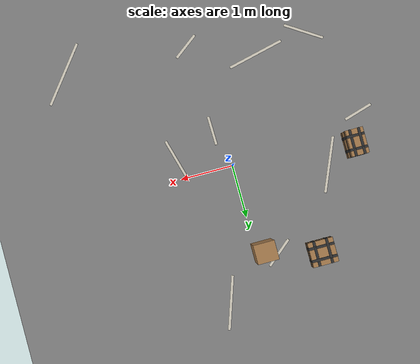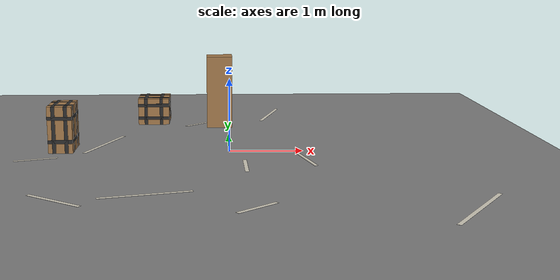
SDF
<sdf version="1.9">
 <world name="ecps295_lowbox_s6_monitor">
  <model name="ground_plane">
   <static>true</static>
   <link name="link">
    <collision name="collision">
     <geometry><plane><normal>0 0 1</normal><size>50 50</size></plane></geometry>
    </collision>
    <visual name="visual">
     <geometry><plane><normal>0 0 1</normal><size>50 50</size></plane></geometry>
     <material><ambient>0.5 0.5 0.5 1</ambient><diffuse>0.5 0.5 0.5 1</diffuse></material>
    </visual>
   </link>
  </model>
  <model name="floor_tape">
   <static>true</static>
   <link name="link">
    <visual name="tape0">
     <pose>-0.969 -1.920 0.003 0 0 0.2276</pose>
     <geometry><box><size>1.086 0.050 0.001</size></box></geometry>
     <material><ambient>0.82 0.80 0.74 1</ambient><diffuse>0.82 0.80 0.74 1</diffuse></material>
    </visual>
    <visual name="tape1">
     <pose>0.197 -0.739 0.003 0 0 1.5942</pose>
     <geometry><box><size>0.552 0.050 0.001</size></box></geometry>
     <material><ambient>0.82 0.80 0.74 1</ambient><diffuse>0.82 0.80 0.74 1</diffuse></material>
    </visual>
    <visual name="tape2">
     <pose>-2.544 -0.365 0.003 0 0 0.2850</pose>
     <geometry><box><size>0.563 0.050 0.001</size></box></geometry>
     <material><ambient>0.82 0.80 0.74 1</ambient><diffuse>0.82 0.80 0.74 1</diffuse></material>
    </visual>
    <visual name="tape3">
     <pose>-0.415 1.798 0.003 0 0 0.7013</pose>
     <geometry><box><size>0.611 0.050 0.001</size></box></geometry>
     <material><ambient>0.82 0.80 0.74 1</ambient><diffuse>0.82 0.80 0.74 1</diffuse></material>
    </visual>
    <visual name="tape4">
     <pose>0.701 2.462 0.003 0 0 1.2462</pose>
     <geometry><box><size>1.019 0.050 0.001</size></box></geometry>
     <material><ambient>0.82 0.80 0.74 1</ambient><diffuse>0.82 0.80 0.74 1</diffuse></material>
    </visual>
    <visual name="tape5">
     <pose>2.619 -2.494 0.003 0 0 0.9098</pose>
     <geometry><box><size>1.273 0.050 0.001</size></box></geometry>
     <material><ambient>0.82 0.80 0.74 1</ambient><diffuse>0.82 0.80 0.74 1</diffuse></material>
    </visual>
    <visual name="tape6">
     <pose>-1.957 -2.102 0.003 0 0 2.5639</pose>
     <geometry><box><size>0.778 0.050 0.001</size></box></geometry>
     <material><ambient>0.82 0.80 0.74 1</ambient><diffuse>0.82 0.80 0.74 1</diffuse></material>
    </visual>
    <visual name="tape7">
     <pose>-1.756 0.449 0.003 0 0 1.1699</pose>
     <geometry><box><size>1.075 0.050 0.001</size></box></geometry>
     <material><ambient>0.82 0.80 0.74 1</ambient><diffuse>0.82 0.80 0.74 1</diffuse></material>
    </visual>
    <visual name="tape8">
     <pose>0.263 -2.405 0.003 0 0 0.6470</pose>
     <geometry><box><size>0.554 0.050 0.001</size></box></geometry>
     <material><ambient>0.82 0.80 0.74 1</ambient><diffuse>0.82 0.80 0.74 1</diffuse></material>
    </visual>
    <visual name="tape9">
     <pose>0.992 -0.398 0.003 0 0 1.8396</pose>
     <geometry><box><size>0.783 0.050 0.001</size></box></geometry>
     <material><ambient>0.82 0.80 0.74 1</ambient><diffuse>0.82 0.80 0.74 1</diffuse></material>
    </visual>
   </link>
  </model>
  <model name="lb1">
   <static>true</static>
   <pose>-0.13 1.67 0.55 0 0 0</pose>
   <link name="link">
    <collision name="c"><geometry><box><size>0.39 0.35 1.1</size></box></geometry></collision>
    <visual name="v">
     <geometry><box><size>0.39 0.35 1.1</size></box></geometry>
     <material><ambient>0.65 0.48 0.30 1</ambient><diffuse>0.65 0.48 0.30 1</diffuse></material>
    </visual>
   </link>
  </model>
  <model name="lb2">
   <static>true</static>
   <pose>-2.28 0.19 0.32 0 0 0</pose>
   <link name="link">
    <collision name="c"><geometry><box><size>0.33 0.49 0.64</size></box></geometry></collision>
    <visual name="v">
     <geometry><box><size>0.33 0.49 0.64</size></box></geometry>
     <material><ambient>0.65 0.48 0.30 1</ambient><diffuse>0.65 0.48 0.30 1</diffuse></material>
    </visual>
    <visual name="tape_ring0">
     <pose>0.000 0.000 -0.160 0 0 0</pose>
     <geometry><box><size>0.334 0.494 0.050</size></box></geometry>
     <material><ambient>0.18 0.18 0.18 1</ambient><diffuse>0.18 0.18 0.18 1</diffuse></material>
    </visual>
    <visual name="tape_bx0">
     <pose>-0.083 0.000 0.000 0 0 0</pose>
     <geometry><box><size>0.050 0.494 0.644</size></box></geometry>
     <material><ambient>0.18 0.18 0.18 1</ambient><diffuse>0.18 0.18 0.18 1</diffuse></material>
    </visual>
    <visual name="tape_by0">
     <pose>0.000 -0.122 0.000 0 0 0</pose>
     <geometry><box><size>0.334 0.050 0.644</size></box></geometry>
     <material><ambient>0.18 0.18 0.18 1</ambient><diffuse>0.18 0.18 0.18 1</diffuse></material>
    </visual>
    <visual name="tape_ring1">
     <pose>0.000 0.000 0.160 0 0 0</pose>
     <geometry><box><size>0.334 0.494 0.050</size></box></geometry>
     <material><ambient>0.18 0.18 0.18 1</ambient><diffuse>0.18 0.18 0.18 1</diffuse></material>
    </visual>
    <visual name="tape_bx1">
     <pose>0.083 0.000 0.000 0 0 0</pose>
     <geometry><box><size>0.050 0.494 0.644</size></box></geometry>
     <material><ambient>0.18 0.18 0.18 1</ambient><diffuse>0.18 0.18 0.18 1</diffuse></material>
    </visual>
    <visual name="tape_by1">
     <pose>0.000 0.122 0.000 0 0 0</pose>
     <geometry><box><size>0.334 0.050 0.644</size></box></geometry>
     <material><ambient>0.18 0.18 0.18 1</ambient><diffuse>0.18 0.18 0.18 1</diffuse></material>
    </visual>
   </link>
  </model>
  <model name="lb4">
   <static>true</static>
   <pose>-1.17 1.98 0.205 0 0 0</pose>
   <link name="link">
    <collision name="c"><geometry><box><size>0.48 0.46 0.41</size></box></geometry></collision>
    <visual name="v">
     <geometry><box><size>0.48 0.46 0.41</size></box></geometry>
     <material><ambient>0.65 0.48 0.30 1</ambient><diffuse>0.65 0.48 0.30 1</diffuse></material>
    </visual>
    <visual name="tape_ring0">
     <pose>0.000 0.000 -0.102 0 0 0</pose>
     <geometry><box><size>0.484 0.464 0.050</size></box></geometry>
     <material><ambient>0.18 0.18 0.18 1</ambient><diffuse>0.18 0.18 0.18 1</diffuse></material>
    </visual>
    <visual name="tape_bx0">
     <pose>-0.120 0.000 0.000 0 0 0</pose>
     <geometry><box><size>0.050 0.464 0.414</size></box></geometry>
     <material><ambient>0.18 0.18 0.18 1</ambient><diffuse>0.18 0.18 0.18 1</diffuse></material>
    </visual>
    <visual name="tape_by0">
     <pose>0.000 -0.115 0.000 0 0 0</pose>
     <geometry><box><size>0.484 0.050 0.414</size></box></geometry>
     <material><ambient>0.18 0.18 0.18 1</ambient><diffuse>0.18 0.18 0.18 1</diffuse></material>
    </visual>
    <visual name="tape_ring1">
     <pose>0.000 0.000 0.102 0 0 0</pose>
     <geometry><box><size>0.484 0.464 0.050</size></box></geometry>
     <material><ambient>0.18 0.18 0.18 1</ambient><diffuse>0.18 0.18 0.18 1</diffuse></material>
    </visual>
    <visual name="tape_bx1">
     <pose>0.120 0.000 0.000 0 0 0</pose>
     <geometry><box><size>0.050 0.464 0.414</size></box></geometry>
     <material><ambient>0.18 0.18 0.18 1</ambient><diffuse>0.18 0.18 0.18 1</diffuse></material>
    </visual>
    <visual name="tape_by1">
     <pose>0.000 0.115 0.000 0 0 0</pose>
     <geometry><box><size>0.484 0.050 0.414</size></box></geometry>
     <material><ambient>0.18 0.18 0.18 1</ambient><diffuse>0.18 0.18 0.18 1</diffuse></material>
    </visual>
   </link>
  </model>
 </world>
</sdf>
